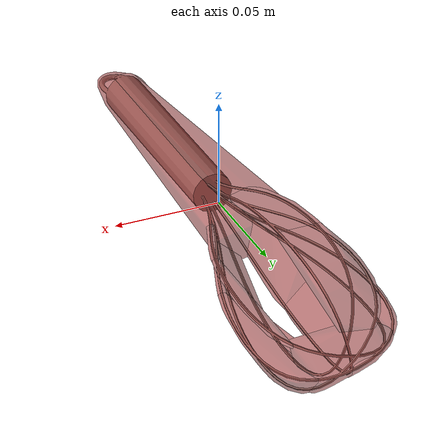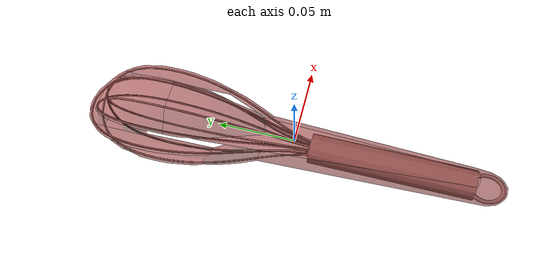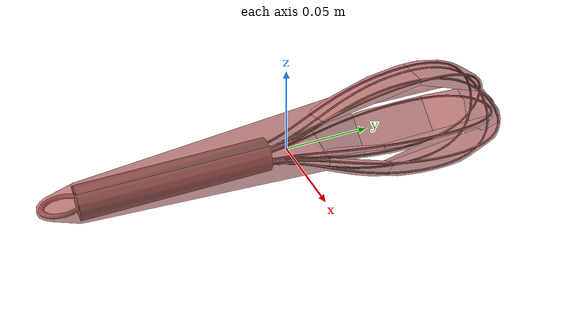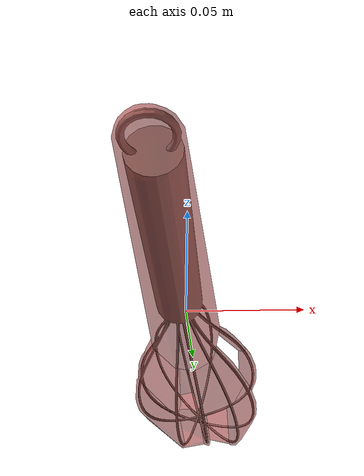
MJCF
<mujoco model="model">
  <option timestep="0.002" gravity="0.0 0.0 -9.81"/>
  <compiler angle="radian"/>
  <asset>
    <mesh file="visual/Whisk005.obj" name="Whisk005_vis"/>
    <texture file="visual/T_BC001.png" name="Whisk005_material" type="2d"/>
    <material name="Whisk005_material" rgba="1 1 1 1.0" texture="Whisk005_material" shininess="1" specular="2"/>
    <mesh file="collision/collision_mesh_collision_0.obj" name="Whisk005_collision_mesh_0"/>
    <mesh file="collision/collision_mesh_collision_1.obj" name="Whisk005_collision_mesh_1"/>
    <mesh file="collision/collision_mesh_collision_2.obj" name="Whisk005_collision_mesh_2"/>
    <mesh file="collision/collision_mesh_collision_3.obj" name="Whisk005_collision_mesh_3"/>
    <mesh file="collision/collision_mesh_collision_4.obj" name="Whisk005_collision_mesh_4"/>
    <mesh file="collision/collision_mesh_collision_5.obj" name="Whisk005_collision_mesh_5"/>
    <mesh file="collision/collision_mesh_collision_6.obj" name="Whisk005_collision_mesh_6"/>
    <mesh file="collision/collision_mesh_collision_7.obj" name="Whisk005_collision_mesh_7"/>
    <mesh file="collision/collision_mesh_collision_8.obj" name="Whisk005_collision_mesh_8"/>
    <mesh file="collision/collision_mesh_collision_9.obj" name="Whisk005_collision_mesh_9"/>
    <mesh file="collision/collision_mesh_collision_10.obj" name="Whisk005_collision_mesh_10"/>
    <mesh file="collision/collision_mesh_collision_11.obj" name="Whisk005_collision_mesh_11"/>
    <mesh file="collision/collision_mesh_collision_12.obj" name="Whisk005_collision_mesh_12"/>
    <mesh file="collision/collision_mesh_collision_13.obj" name="Whisk005_collision_mesh_13"/>
  </asset>
  <default>
    <default class="visual">
      <geom conaffinity="0" contype="0" group="1" type="mesh"/>
    </default>
    <default class="collision">
      <geom group="0" rgba="0.5 0 0 0.5" density="1.0" solref="0.004 1" solimp="0.998 0.998 0.001"/>
    </default>
    <default class="spawn">
      <geom group="0" rgba="1 1 1 0.5" contype="0" conaffinity="0"/>
      <site group="0" rgba="1 1 1 0.5"/>
    </default>
    <default class="region">
      <geom group="1" conaffinity="0" contype="0" rgba="0 1 0 0" mass="0"/>
    </default>
  </default>
  <worldbody>
    <body>
      <body name="object">
        <geom mesh="Whisk005_vis" type="mesh" solimp="0.998 0.998 0.001" solref="0.001 1" friction="0.95 0.3 0.1" class="visual" material="Whisk005_material"/>
        <geom class="region" name="reg_bbox" type="box" pos="3.281499999999854e-05 -8.246500000000379e-05 -8.391499999999864e-05" size="0.030310475 0.137214695 0.030288614999999998"/>
        <geom mesh="Whisk005_collision_mesh_0" type="mesh" class="collision"/>
        <geom mesh="Whisk005_collision_mesh_1" type="mesh" class="collision"/>
        <geom mesh="Whisk005_collision_mesh_2" type="mesh" class="collision"/>
        <geom mesh="Whisk005_collision_mesh_3" type="mesh" class="collision"/>
        <geom mesh="Whisk005_collision_mesh_4" type="mesh" class="collision"/>
        <geom mesh="Whisk005_collision_mesh_5" type="mesh" class="collision"/>
        <geom mesh="Whisk005_collision_mesh_6" type="mesh" class="collision"/>
        <geom mesh="Whisk005_collision_mesh_7" type="mesh" class="collision"/>
        <geom mesh="Whisk005_collision_mesh_8" type="mesh" class="collision"/>
        <geom mesh="Whisk005_collision_mesh_9" type="mesh" class="collision"/>
        <geom mesh="Whisk005_collision_mesh_10" type="mesh" class="collision"/>
        <geom mesh="Whisk005_collision_mesh_11" type="mesh" class="collision"/>
        <geom mesh="Whisk005_collision_mesh_12" type="mesh" class="collision"/>
        <geom mesh="Whisk005_collision_mesh_13" type="mesh" class="collision"/>
      </body>
    </body>
  </worldbody>
  <actuator/>
</mujoco>
